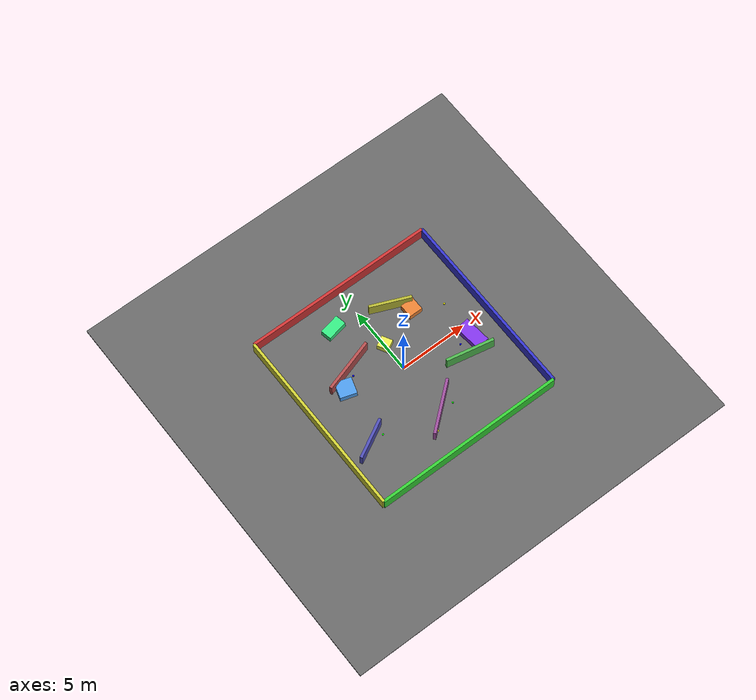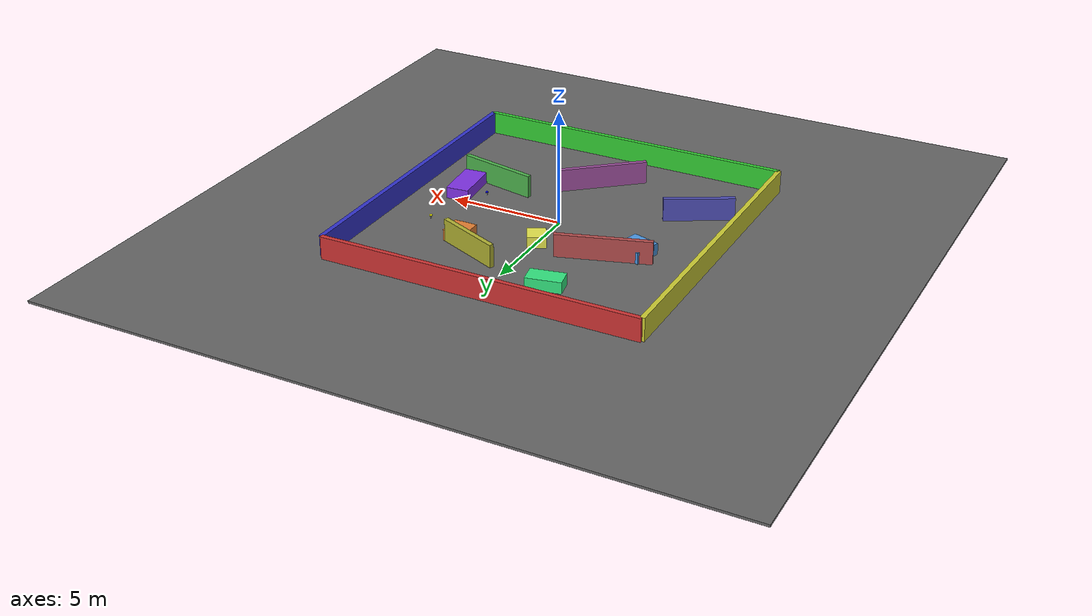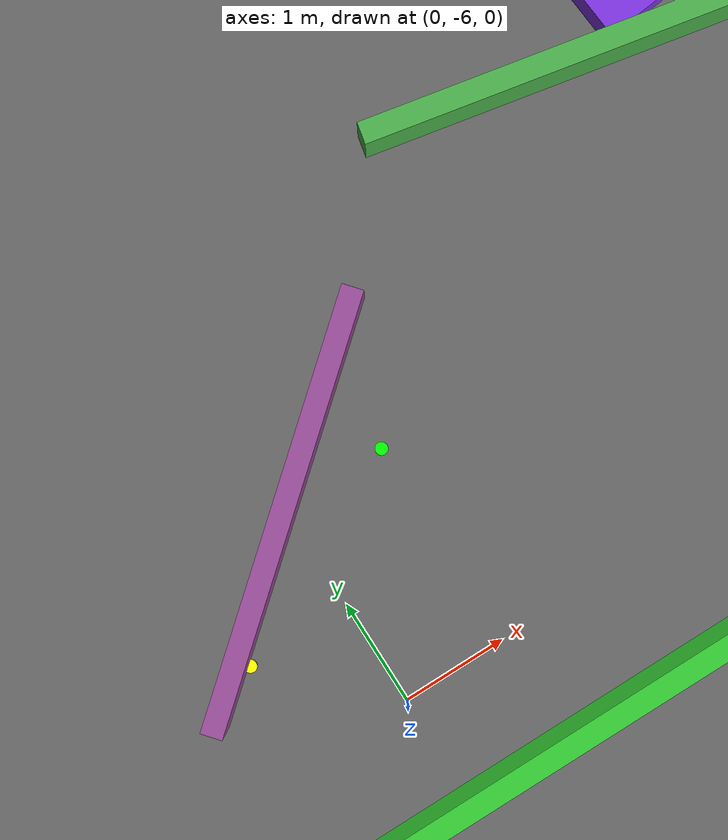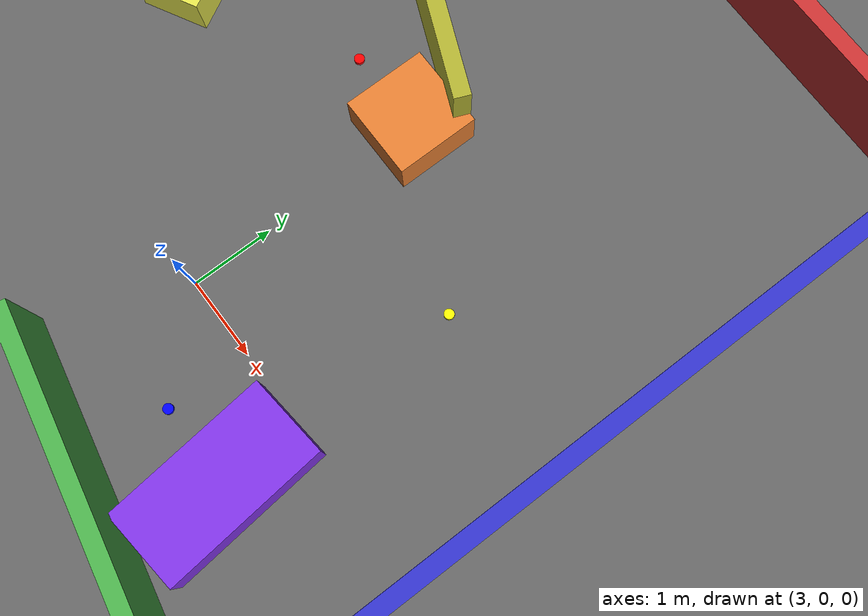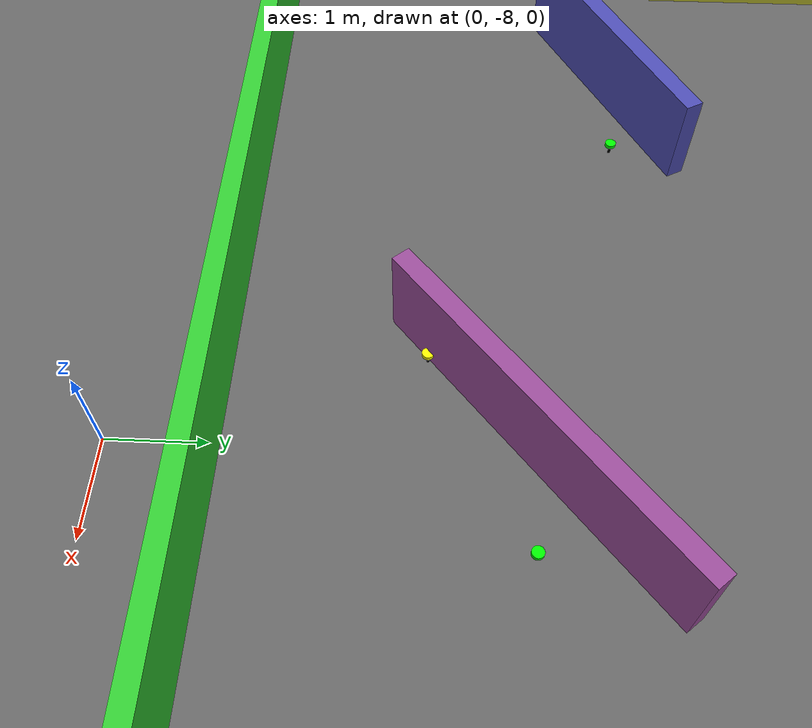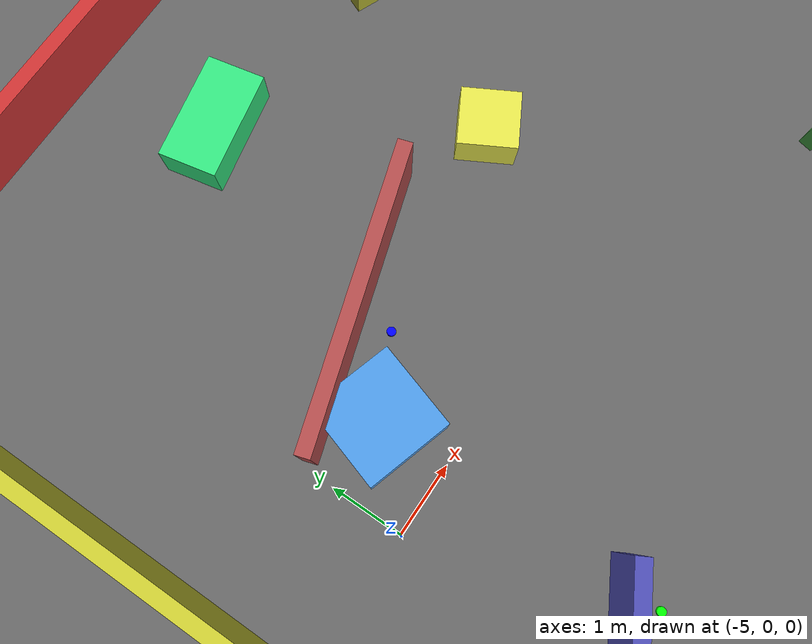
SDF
<sdf version="1.7">
  <world name="sortabot_world">
    <light type="directional" name="sun">
      <pose>0 0 10 0 0 0</pose>
      <diffuse>1.0 1.0 0.9 1</diffuse>
      <specular>0.5 0.5 0.5 1</specular>
      <direction>0.1 0.1 -1</direction>
    </light>

    <physics type="ode">
      <max_step_size>0.001</max_step_size>
      <real_time_factor>1.0</real_time_factor>
      <gravity>0 0 -9.81</gravity>
    </physics>

    <model name="ground">
      <static>true</static>
      <link name="link">
        <pose>0 0 -0.05 0 0 0</pose>
        <collision name="collision">
          <geometry><box><size>30 30 0.1</size></box></geometry>
        </collision>
        <visual name="visual">
          <geometry><box><size>30 30 0.1</size></box></geometry>
          <material>
            <ambient>0.4 0.4 0.4 1</ambient>
          <diffuse>0.4 0.4 0.4 1</diffuse>
            <diffuse>0.7 0.7 0.7 1</diffuse>
          </material>
        </visual>
      </link>
    </model>

    <!-- 14x14 arena walls -->
    <model name="wall_north">
      <static>true</static>
      <link name="link">
        <pose>0 7 0.5 0 0 0</pose>  <!-- Y position: 14/2 = 7 -->
        <collision name="col">
          <geometry><box><size>14 0.2 1.0</size></box></geometry>  <!-- Width: 14 -->
        </collision>
        <visual name="vis">
          <geometry><box><size>14 0.2 1.0</size></box></geometry>
          <material><ambient>0.8 0.2 0.2 1</ambient>
          <diffuse>0.8 0.2 0.2 1</diffuse></material>
        </visual>
      </link>
    </model>

    <model name="wall_south">
      <static>true</static>
      <link name="link">
        <pose>0 -7 0.5 0 0 0</pose>  <!-- Y position: -7 -->
        <collision name="col">
          <geometry><box><size>14 0.2 1.0</size></box></geometry>
        </collision>
        <visual name="vis">
          <geometry><box><size>14 0.2 1.0</size></box></geometry>
          <material><ambient>0.2 0.8 0.2 1</ambient>
          <diffuse>0.2 0.8 0.2 1</diffuse></material>
        </visual>
      </link>
    </model>

    <model name="wall_east">
      <static>true</static>
      <link name="link">
        <pose>7 0 0.5 0 0 0</pose>  <!-- X position: 7 -->
        <collision name="col">
          <geometry><box><size>0.2 14 1.0</size></box></geometry>  <!-- Length: 14 -->
        </collision>
        <visual name="vis">
          <geometry><box><size>0.2 14 1.0</size></box></geometry>
          <material><ambient>0.2 0.2 0.8 1</ambient>
          <diffuse>0.2 0.2 0.8 1</diffuse></material>
        </visual>
      </link>
    </model>

    <model name="wall_west">
      <static>true</static>
      <link name="link">
        <pose>-7 0 0.5 0 0 0</pose>  <!-- X position: -7 -->
        <collision name="col">
          <geometry><box><size>0.2 14 1.0</size></box></geometry>
        </collision>
        <visual name="vis">
          <geometry><box><size>0.2 14 1.0</size></box></geometry>
          <material><ambient>0.8 0.8 0.2 1</ambient>
          <diffuse>0.8 0.8 0.2 1</diffuse></material>
        </visual>
      </link>
    </model>

<!-- RANDOM WALL OBSTACLES -->
<model name="wall_obs_1">
  <static>true</static>
  <link name="link">
    <pose>-3 2 0.5 0 0 0.3</pose>
    <collision name="col">
      <geometry>
        <box>
          <size>4 0.2 1.0</size>
        </box>
      </geometry>
    </collision>
    <visual name="vis">
      <geometry>
        <box>
          <size>4 0.2 1.0</size>
        </box>
      </geometry>
      <material>
        <ambient>0.7 0.3 0.3 1</ambient>
          <diffuse>0.7 0.3 0.3 1</diffuse>
      </material>
    </visual>
  </link>
</model>

<model name="wall_obs_2">
  <static>true</static>
  <link name="link">
    <pose>4 -2 0.5 0 0 -0.2</pose>
    <collision name="col">
      <geometry>
        <box>
          <size>3.5 0.2 1.0</size>
        </box>
      </geometry>
    </collision>
    <visual name="vis">
      <geometry>
        <box>
          <size>3.5 0.2 1.0</size>
        </box>
      </geometry>
      <material>
        <ambient>0.3 0.7 0.3 1</ambient>
          <diffuse>0.3 0.7 0.3 1</diffuse>
      </material>
    </visual>
  </link>
</model>

<model name="wall_obs_3">
  <static>true</static>
  <link name="link">
    <pose>-5 -3 0.5 0 0 0.5</pose>
    <collision name="col">
      <geometry>
        <box>
          <size>3 0.2 1.0</size>
        </box>
      </geometry>
    </collision>
    <visual name="vis">
      <geometry>
        <box>
          <size>3 0.2 1.0</size>
        </box>
      </geometry>
      <material>
        <ambient>0.3 0.3 0.7 1</ambient>
          <diffuse>0.3 0.3 0.7 1</diffuse>
      </material>
    </visual>
  </link>
</model>

<model name="wall_obs_4">
  <static>true</static>
  <link name="link">
    <pose>2 4 0.5 0 0 -0.4</pose>
    <collision name="col">
      <geometry>
        <box>
          <size>3 0.2 1.0</size>
        </box>
      </geometry>
    </collision>
    <visual name="vis">
      <geometry>
        <box>
          <size>3 0.2 1.0</size>
        </box>
      </geometry>
      <material>
        <ambient>0.7 0.7 0.2 1</ambient>
          <diffuse>0.7 0.7 0.2 1</diffuse>
      </material>
    </visual>
  </link>
</model>

<model name="wall_obs_5">
  <static>true</static>
  <link name="link">
    <pose>0 -4 0.5 0 0 0.7</pose>
    <collision name="col">
      <geometry>
        <box>
          <size>4 0.2 1.0</size>
        </box>
      </geometry>
    </collision>
    <visual name="vis">
      <geometry>
        <box>
          <size>4 0.2 1.0</size>
        </box>
      </geometry>
      <material>
        <ambient>0.6 0.3 0.6 1</ambient>
          <diffuse>0.6 0.3 0.6 1</diffuse>
      </material>
    </visual>
  </link>
</model>

<!-- RANDOM BOX OBSTACLES -->
<model name="box_obs_1">
  <static>true</static>
  <link name="link">
    <pose>3 3 0.25 0 0 0</pose>
    <collision name="col">
      <geometry>
        <box>
          <size>1 1 0.5</size>
        </box>
      </geometry>
    </collision>
    <visual name="vis">
      <geometry>
        <box>
          <size>1 1 0.5</size>
        </box>
      </geometry>
      <material>
        <ambient>0.9 0.5 0.2 1</ambient>
          <diffuse>0.9 0.5 0.2 1</diffuse>
      </material>
    </visual>
  </link>
</model>

<model name="box_obs_2">
  <static>true</static>
  <link name="link">
    <pose>-2 5 0.25 0 0 0.2</pose>
    <collision name="col">
      <geometry>
        <box>
          <size>1.5 0.8 0.5</size>
        </box>
      </geometry>
    </collision>
    <visual name="vis">
      <geometry>
        <box>
          <size>1.5 0.8 0.5</size>
        </box>
      </geometry>
      <material>
        <ambient>0.2 0.9 0.5 1</ambient>
          <diffuse>0.2 0.9 0.5 1</diffuse>
      </material>
    </visual>
  </link>
</model>

<model name="box_obs_3">
  <static>true</static>
  <link name="link">
    <pose>5 -1 0.25 0 0 0.1</pose>
    <collision name="col">
      <geometry>
        <box>
          <size>1 2 0.5</size>
        </box>
      </geometry>
    </collision>
    <visual name="vis">
      <geometry>
        <box>
          <size>1 2 0.5</size>
        </box>
      </geometry>
      <material>
        <ambient>0.5 0.2 0.9 1</ambient>
          <diffuse>0.5 0.2 0.9 1</diffuse>
      </material>
    </visual>
  </link>
</model>

<model name="box_obs_4">
  <static>true</static>
  <link name="link">
    <pose>-4 1 0.25 0 0 -0.3</pose>
    <collision name="col">
      <geometry>
        <box>
          <size>1.2 1.2 0.5</size>
        </box>
      </geometry>
    </collision>
    <visual name="vis">
      <geometry>
        <box>
          <size>1.2 1.2 0.5</size>
        </box>
      </geometry>
      <material>
        <ambient>0.3 0.6 0.9 1</ambient>
          <diffuse>0.3 0.6 0.9 1</diffuse>
      </material>
    </visual>
  </link>
</model>

<model name="box_obs_5">
  <static>true</static>
  <link name="link">
    <pose>0 2 0.25 0 0 0.5</pose>
    <collision name="col">
      <geometry>
        <box>
          <size>0.8 0.8 0.5</size>
        </box>
      </geometry>
    </collision>
    <visual name="vis">
      <geometry>
        <box>
          <size>0.8 0.8 0.5</size>
        </box>
      </geometry>
      <material>
        <ambient>0.9 0.9 0.3 1</ambient>
          <diffuse>0.9 0.9 0.3 1</diffuse>
      </material>
    </visual>
  </link>
</model>

    <!-- Robot will be spawned via launch file -->

    <!-- DUMBBELLS (generated) -->
    <model name="dumbbell_red_0">
      <pose>2.0 3.0 0.03 0 1.5708 0</pose>
      <link name="handle">
        <pose>0 0 0 0 1.5708 0</pose>
        <visual name="handle_visual">
          <geometry>
            <cylinder>
              <length>0.15</length>
              <radius>0.015</radius>
            </cylinder>
          </geometry>
          <material>
            <ambient>0 0 0 1</ambient>
          <diffuse>0 0 0 1</diffuse>
            <diffuse>0.1 0.1 0.1 1</diffuse>
          </material>
        </visual>
        <collision name="handle_collision">
          <geometry>
            <cylinder>
              <length>0.15</length>
              <radius>0.015</radius>
            </cylinder>
          </geometry>
        </collision>
      </link>

      <link name="left_weight">
        <pose>-0.095 0 0 0 1.5708 0</pose>
        <visual name="left_visual">
          <geometry>
            <cylinder>
              <length>0.04</length>
              <radius>0.06</radius>
            </cylinder>
          </geometry>
          <material>
            <ambient>1 0 0 1</ambient>
          <diffuse>1 0 0 1</diffuse>
            <diffuse>1 0 0 1</diffuse>
          </material>
        </visual>
        <collision name="left_collision">
          <geometry>
            <cylinder>
              <length>0.04</length>
              <radius>0.06</radius>
            </cylinder>
          </geometry>
        </collision>
        <inertial>
          <mass>4.0</mass>
        </inertial>
      </link>

      <link name="right_weight">
        <pose>0.095 0 0 0 1.5708 0</pose>
        <visual name="right_visual">
          <geometry>
            <cylinder>
              <length>0.04</length>
              <radius>0.06</radius>
            </cylinder>
          </geometry>
          <material>
            <ambient>1 0 0 1</ambient>
          <diffuse>1 0 0 1</diffuse>
            <diffuse>1 0 0 1</diffuse>
          </material>
        </visual>
        <collision name="right_collision">
          <geometry>
            <cylinder>
              <length>0.04</length>
              <radius>0.06</radius>
            </cylinder>
          </geometry>
        </collision>
        <inertial>
          <mass>4.0</mass>
        </inertial>
      </link>

      <joint name="left_joint" type="fixed">
        <parent>handle</parent>
        <child>left_weight</child>
      </joint>

      <joint name="right_joint" type="fixed">
        <parent>handle</parent>
        <child>right_weight</child>
      </joint>
    </model>
    <model name="dumbbell_red_1">
      <pose>-2.0 5.0 0.03 0 1.5708 0</pose>
      <link name="handle">
        <pose>0 0 0 0 1.5708 0</pose>
        <visual name="handle_visual">
          <geometry>
            <cylinder>
              <length>0.15</length>
              <radius>0.015</radius>
            </cylinder>
          </geometry>
          <material>
            <ambient>0 0 0 1</ambient>
          <diffuse>0 0 0 1</diffuse>
            <diffuse>0.1 0.1 0.1 1</diffuse>
          </material>
        </visual>
        <collision name="handle_collision">
          <geometry>
            <cylinder>
              <length>0.15</length>
              <radius>0.015</radius>
            </cylinder>
          </geometry>
        </collision>
      </link>

      <link name="left_weight">
        <pose>-0.095 0 0 0 1.5708 0</pose>
        <visual name="left_visual">
          <geometry>
            <cylinder>
              <length>0.04</length>
              <radius>0.06</radius>
            </cylinder>
          </geometry>
          <material>
            <ambient>1 0 0 1</ambient>
          <diffuse>1 0 0 1</diffuse>
            <diffuse>1 0 0 1</diffuse>
          </material>
        </visual>
        <collision name="left_collision">
          <geometry>
            <cylinder>
              <length>0.04</length>
              <radius>0.06</radius>
            </cylinder>
          </geometry>
        </collision>
        <inertial>
          <mass>8.0</mass>
        </inertial>
      </link>

      <link name="right_weight">
        <pose>0.095 0 0 0 1.5708 0</pose>
        <visual name="right_visual">
          <geometry>
            <cylinder>
              <length>0.04</length>
              <radius>0.06</radius>
            </cylinder>
          </geometry>
          <material>
            <ambient>1 0 0 1</ambient>
          <diffuse>1 0 0 1</diffuse>
            <diffuse>1 0 0 1</diffuse>
          </material>
        </visual>
        <collision name="right_collision">
          <geometry>
            <cylinder>
              <length>0.04</length>
              <radius>0.06</radius>
            </cylinder>
          </geometry>
        </collision>
        <inertial>
          <mass>8.0</mass>
        </inertial>
      </link>

      <joint name="left_joint" type="fixed">
        <parent>handle</parent>
        <child>left_weight</child>
      </joint>

      <joint name="right_joint" type="fixed">
        <parent>handle</parent>
        <child>right_weight</child>
      </joint>
    </model>
    <model name="dumbbell_blue_2">
      <pose>-3.0 1.5 0.03 0 1.5708 0</pose>
      <link name="handle">
        <pose>0 0 0 0 1.5708 0</pose>
        <visual name="handle_visual">
          <geometry>
            <cylinder>
              <length>0.15</length>
              <radius>0.015</radius>
            </cylinder>
          </geometry>
          <material>
            <ambient>0 0 0 1</ambient>
          <diffuse>0 0 0 1</diffuse>
            <diffuse>0.1 0.1 0.1 1</diffuse>
          </material>
        </visual>
        <collision name="handle_collision">
          <geometry>
            <cylinder>
              <length>0.15</length>
              <radius>0.015</radius>
            </cylinder>
          </geometry>
        </collision>
      </link>

      <link name="left_weight">
        <pose>-0.095 0 0 0 1.5708 0</pose>
        <visual name="left_visual">
          <geometry>
            <cylinder>
              <length>0.04</length>
              <radius>0.06</radius>
            </cylinder>
          </geometry>
          <material>
            <ambient>0 0 1 1</ambient>
          <diffuse>0 0 1 1</diffuse>
            <diffuse>0 0 1 1</diffuse>
          </material>
        </visual>
        <collision name="left_collision">
          <geometry>
            <cylinder>
              <length>0.04</length>
              <radius>0.06</radius>
            </cylinder>
          </geometry>
        </collision>
        <inertial>
          <mass>3.0</mass>
        </inertial>
      </link>

      <link name="right_weight">
        <pose>0.095 0 0 0 1.5708 0</pose>
        <visual name="right_visual">
          <geometry>
            <cylinder>
              <length>0.04</length>
              <radius>0.06</radius>
            </cylinder>
          </geometry>
          <material>
            <ambient>0 0 1 1</ambient>
          <diffuse>0 0 1 1</diffuse>
            <diffuse>0 0 1 1</diffuse>
          </material>
        </visual>
        <collision name="right_collision">
          <geometry>
            <cylinder>
              <length>0.04</length>
              <radius>0.06</radius>
            </cylinder>
          </geometry>
        </collision>
        <inertial>
          <mass>3.0</mass>
        </inertial>
      </link>

      <joint name="left_joint" type="fixed">
        <parent>handle</parent>
        <child>left_weight</child>
      </joint>

      <joint name="right_joint" type="fixed">
        <parent>handle</parent>
        <child>right_weight</child>
      </joint>
    </model>
    <model name="dumbbell_blue_3">
      <pose>4.0 -1.0 0.03 0 1.5708 0</pose>
      <link name="handle">
        <pose>0 0 0 0 1.5708 0</pose>
        <visual name="handle_visual">
          <geometry>
            <cylinder>
              <length>0.15</length>
              <radius>0.015</radius>
            </cylinder>
          </geometry>
          <material>
            <ambient>0 0 0 1</ambient>
          <diffuse>0 0 0 1</diffuse>
            <diffuse>0.1 0.1 0.1 1</diffuse>
          </material>
        </visual>
        <collision name="handle_collision">
          <geometry>
            <cylinder>
              <length>0.15</length>
              <radius>0.015</radius>
            </cylinder>
          </geometry>
        </collision>
      </link>

      <link name="left_weight">
        <pose>-0.095 0 0 0 1.5708 0</pose>
        <visual name="left_visual">
          <geometry>
            <cylinder>
              <length>0.04</length>
              <radius>0.06</radius>
            </cylinder>
          </geometry>
          <material>
            <ambient>0 0 1 1</ambient>
          <diffuse>0 0 1 1</diffuse>
            <diffuse>0 0 1 1</diffuse>
          </material>
        </visual>
        <collision name="left_collision">
          <geometry>
            <cylinder>
              <length>0.04</length>
              <radius>0.06</radius>
            </cylinder>
          </geometry>
        </collision>
        <inertial>
          <mass>9.0</mass>
        </inertial>
      </link>

      <link name="right_weight">
        <pose>0.095 0 0 0 1.5708 0</pose>
        <visual name="right_visual">
          <geometry>
            <cylinder>
              <length>0.04</length>
              <radius>0.06</radius>
            </cylinder>
          </geometry>
          <material>
            <ambient>0 0 1 1</ambient>
          <diffuse>0 0 1 1</diffuse>
            <diffuse>0 0 1 1</diffuse>
          </material>
        </visual>
        <collision name="right_collision">
          <geometry>
            <cylinder>
              <length>0.04</length>
              <radius>0.06</radius>
            </cylinder>
          </geometry>
        </collision>
        <inertial>
          <mass>9.0</mass>
        </inertial>
      </link>

      <joint name="left_joint" type="fixed">
        <parent>handle</parent>
        <child>left_weight</child>
      </joint>

      <joint name="right_joint" type="fixed">
        <parent>handle</parent>
        <child>right_weight</child>
      </joint>
    </model>
    <model name="dumbbell_green_4">
      <pose>1.0 -4.0 0.03 0 1.5708 0</pose>
      <link name="handle">
        <pose>0 0 0 0 1.5708 0</pose>
        <visual name="handle_visual">
          <geometry>
            <cylinder>
              <length>0.15</length>
              <radius>0.015</radius>
            </cylinder>
          </geometry>
          <material>
            <ambient>0 0 0 1</ambient>
          <diffuse>0 0 0 1</diffuse>
            <diffuse>0.1 0.1 0.1 1</diffuse>
          </material>
        </visual>
        <collision name="handle_collision">
          <geometry>
            <cylinder>
              <length>0.15</length>
              <radius>0.015</radius>
            </cylinder>
          </geometry>
        </collision>
      </link>

      <link name="left_weight">
        <pose>-0.095 0 0 0 1.5708 0</pose>
        <visual name="left_visual">
          <geometry>
            <cylinder>
              <length>0.04</length>
              <radius>0.06</radius>
            </cylinder>
          </geometry>
          <material>
            <ambient>0 1 0 1</ambient>
          <diffuse>0 1 0 1</diffuse>
            <diffuse>0 1 0 1</diffuse>
          </material>
        </visual>
        <collision name="left_collision">
          <geometry>
            <cylinder>
              <length>0.04</length>
              <radius>0.06</radius>
            </cylinder>
          </geometry>
        </collision>
        <inertial>
          <mass>5.0</mass>
        </inertial>
      </link>

      <link name="right_weight">
        <pose>0.095 0 0 0 1.5708 0</pose>
        <visual name="right_visual">
          <geometry>
            <cylinder>
              <length>0.04</length>
              <radius>0.06</radius>
            </cylinder>
          </geometry>
          <material>
            <ambient>0 1 0 1</ambient>
          <diffuse>0 1 0 1</diffuse>
            <diffuse>0 1 0 1</diffuse>
          </material>
        </visual>
        <collision name="right_collision">
          <geometry>
            <cylinder>
              <length>0.04</length>
              <radius>0.06</radius>
            </cylinder>
          </geometry>
        </collision>
        <inertial>
          <mass>5.0</mass>
        </inertial>
      </link>

      <joint name="left_joint" type="fixed">
        <parent>handle</parent>
        <child>left_weight</child>
      </joint>

      <joint name="right_joint" type="fixed">
        <parent>handle</parent>
        <child>right_weight</child>
      </joint>
    </model>
    <model name="dumbbell_green_5">
      <pose>-4.0 -3.0 0.03 0 1.5708 0</pose>
      <link name="handle">
        <pose>0 0 0 0 1.5708 0</pose>
        <visual name="handle_visual">
          <geometry>
            <cylinder>
              <length>0.15</length>
              <radius>0.015</radius>
            </cylinder>
          </geometry>
          <material>
            <ambient>0 0 0 1</ambient>
          <diffuse>0 0 0 1</diffuse>
            <diffuse>0.1 0.1 0.1 1</diffuse>
          </material>
        </visual>
        <collision name="handle_collision">
          <geometry>
            <cylinder>
              <length>0.15</length>
              <radius>0.015</radius>
            </cylinder>
          </geometry>
        </collision>
      </link>

      <link name="left_weight">
        <pose>-0.095 0 0 0 1.5708 0</pose>
        <visual name="left_visual">
          <geometry>
            <cylinder>
              <length>0.04</length>
              <radius>0.06</radius>
            </cylinder>
          </geometry>
          <material>
            <ambient>0 1 0 1</ambient>
          <diffuse>0 1 0 1</diffuse>
            <diffuse>0 1 0 1</diffuse>
          </material>
        </visual>
        <collision name="left_collision">
          <geometry>
            <cylinder>
              <length>0.04</length>
              <radius>0.06</radius>
            </cylinder>
          </geometry>
        </collision>
        <inertial>
          <mass>10.0</mass>
        </inertial>
      </link>

      <link name="right_weight">
        <pose>0.095 0 0 0 1.5708 0</pose>
        <visual name="right_visual">
          <geometry>
            <cylinder>
              <length>0.04</length>
              <radius>0.06</radius>
            </cylinder>
          </geometry>
          <material>
            <ambient>0 1 0 1</ambient>
          <diffuse>0 1 0 1</diffuse>
            <diffuse>0 1 0 1</diffuse>
          </material>
        </visual>
        <collision name="right_collision">
          <geometry>
            <cylinder>
              <length>0.04</length>
              <radius>0.06</radius>
            </cylinder>
          </geometry>
        </collision>
        <inertial>
          <mass>10.0</mass>
        </inertial>
      </link>

      <joint name="left_joint" type="fixed">
        <parent>handle</parent>
        <child>left_weight</child>
      </joint>

      <joint name="right_joint" type="fixed">
        <parent>handle</parent>
        <child>right_weight</child>
      </joint>
    </model>
    <model name="dumbbell_yellow_6">
      <pose>5.0 2.0 0.03 0 1.5708 0</pose>
      <link name="handle">
        <pose>0 0 0 0 1.5708 0</pose>
        <visual name="handle_visual">
          <geometry>
            <cylinder>
              <length>0.15</length>
              <radius>0.015</radius>
            </cylinder>
          </geometry>
          <material>
            <ambient>0 0 0 1</ambient>
          <diffuse>0 0 0 1</diffuse>
            <diffuse>0.1 0.1 0.1 1</diffuse>
          </material>
        </visual>
        <collision name="handle_collision">
          <geometry>
            <cylinder>
              <length>0.15</length>
              <radius>0.015</radius>
            </cylinder>
          </geometry>
        </collision>
      </link>

      <link name="left_weight">
        <pose>-0.095 0 0 0 1.5708 0</pose>
        <visual name="left_visual">
          <geometry>
            <cylinder>
              <length>0.04</length>
              <radius>0.06</radius>
            </cylinder>
          </geometry>
          <material>
            <ambient>1 1 0 1</ambient>
          <diffuse>1 1 0 1</diffuse>
            <diffuse>1 1 0 1</diffuse>
          </material>
        </visual>
        <collision name="left_collision">
          <geometry>
            <cylinder>
              <length>0.04</length>
              <radius>0.06</radius>
            </cylinder>
          </geometry>
        </collision>
        <inertial>
          <mass>3.5</mass>
        </inertial>
      </link>

      <link name="right_weight">
        <pose>0.095 0 0 0 1.5708 0</pose>
        <visual name="right_visual">
          <geometry>
            <cylinder>
              <length>0.04</length>
              <radius>0.06</radius>
            </cylinder>
          </geometry>
          <material>
            <ambient>1 1 0 1</ambient>
          <diffuse>1 1 0 1</diffuse>
            <diffuse>1 1 0 1</diffuse>
          </material>
        </visual>
        <collision name="right_collision">
          <geometry>
            <cylinder>
              <length>0.04</length>
              <radius>0.06</radius>
            </cylinder>
          </geometry>
        </collision>
        <inertial>
          <mass>3.5</mass>
        </inertial>
      </link>

      <joint name="left_joint" type="fixed">
        <parent>handle</parent>
        <child>left_weight</child>
      </joint>

      <joint name="right_joint" type="fixed">
        <parent>handle</parent>
        <child>right_weight</child>
      </joint>
    </model>
    <model name="dumbbell_yellow_7">
      <pose>-1.0 -5.0 0.03 0 1.5708 0</pose>
      <link name="handle">
        <pose>0 0 0 0 1.5708 0</pose>
        <visual name="handle_visual">
          <geometry>
            <cylinder>
              <length>0.15</length>
              <radius>0.015</radius>
            </cylinder>
          </geometry>
          <material>
            <ambient>0 0 0 1</ambient>
          <diffuse>0 0 0 1</diffuse>
            <diffuse>0.1 0.1 0.1 1</diffuse>
          </material>
        </visual>
        <collision name="handle_collision">
          <geometry>
            <cylinder>
              <length>0.15</length>
              <radius>0.015</radius>
            </cylinder>
          </geometry>
        </collision>
      </link>

      <link name="left_weight">
        <pose>-0.095 0 0 0 1.5708 0</pose>
        <visual name="left_visual">
          <geometry>
            <cylinder>
              <length>0.04</length>
              <radius>0.06</radius>
            </cylinder>
          </geometry>
          <material>
            <ambient>1 1 0 1</ambient>
          <diffuse>1 1 0 1</diffuse>
            <diffuse>1 1 0 1</diffuse>
          </material>
        </visual>
        <collision name="left_collision">
          <geometry>
            <cylinder>
              <length>0.04</length>
              <radius>0.06</radius>
            </cylinder>
          </geometry>
        </collision>
        <inertial>
          <mass>7.0</mass>
        </inertial>
      </link>

      <link name="right_weight">
        <pose>0.095 0 0 0 1.5708 0</pose>
        <visual name="right_visual">
          <geometry>
            <cylinder>
              <length>0.04</length>
              <radius>0.06</radius>
            </cylinder>
          </geometry>
          <material>
            <ambient>1 1 0 1</ambient>
          <diffuse>1 1 0 1</diffuse>
            <diffuse>1 1 0 1</diffuse>
          </material>
        </visual>
        <collision name="right_collision">
          <geometry>
            <cylinder>
              <length>0.04</length>
              <radius>0.06</radius>
            </cylinder>
          </geometry>
        </collision>
        <inertial>
          <mass>7.0</mass>
        </inertial>
      </link>

      <joint name="left_joint" type="fixed">
        <parent>handle</parent>
        <child>left_weight</child>
      </joint>

      <joint name="right_joint" type="fixed">
        <parent>handle</parent>
        <child>right_weight</child>
      </joint>
    </model>

  </world>
</sdf>
